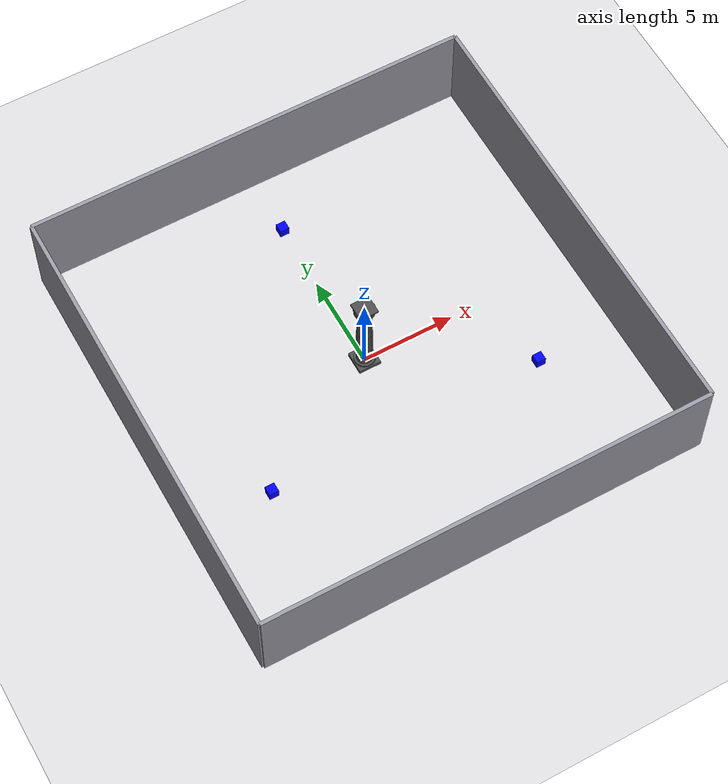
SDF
<?xml version='1.0' encoding='utf-8'?>
<sdf version="1.7">
  <world name="default">

    <physics type="ode">
      <max_step_size>0.004</max_step_size>
      <real_time_factor>1.0</real_time_factor>
      <real_time_update_rate>250</real_time_update_rate>
    </physics>
    <gravity>0 0 -9.8</gravity>
    <magnetic_field>6e-06 2.3e-05 -4.2e-05</magnetic_field>
    <atmosphere type="adiabatic" />
    <scene>
      <grid>false</grid>
      <ambient>0.4 0.4 0.4 1</ambient>
      <background>0.7 0.7 0.7 1</background>
      <shadows>true</shadows>
    </scene>

    <light name="sunUTC" type="directional">
      <pose>0 0 100 0 0 0</pose>
      <diffuse>0.8 0.8 0.8 1</diffuse>
      <specular>0.1 0.1 0.1 1</specular>
      <direction>0 0 -1</direction>
      <cast_shadows>true</cast_shadows>
    </light>

    <spherical_coordinates>
      <surface_model>EARTH_WGS84</surface_model>
      <world_frame_orientation>ENU</world_frame_orientation>
      <latitude_deg>47.397971057728974</latitude_deg>
      <longitude_deg> 8.546163739800146</longitude_deg>
      <elevation>0</elevation>
    </spherical_coordinates>

    <model name="ground">
      <static>true</static>
      <link name="ground_link">
        <collision name="ground_collision">
          <geometry>
            <plane>
              <normal>0 0 1</normal>
              <size>100 100</size>
            </plane>
          </geometry>
          <surface>
            <friction><ode><mu>1.0</mu><mu2>1.0</mu2></ode></friction>
          </surface>
        </collision>
        <visual name="ground_visual">
          <geometry>
            <plane><normal>0 0 1</normal><size>100 100</size></plane>
          </geometry>
          <material>
            <ambient>0.85 0.85 0.86 1</ambient>
            <diffuse>0.85 0.85 0.86 1</diffuse>
            <pbr><metal><roughness>0.95</roughness><metalness>0.0</metalness></metal></pbr>
          </material>
        </visual>
      </link>
    </model>

    <model name="wall_north"><static>true</static><pose>0 12 2.5 0 0 0</pose>
      <link name="wall">
      <collision name="c"><geometry><box><size>24 0.2 5</size></box></geometry></collision>
      <visual name="v"><geometry><box><size>24 0.2 5</size></box></geometry>
        <material><ambient>0.6 0.6 0.64 1</ambient><diffuse>0.6 0.6 0.64 1</diffuse></material>
      </visual>
      </link>
    </model>
    <model name="wall_south"><static>true</static><pose>0 -12 2.5 0 0 0</pose>
      <link name="wall">
      <collision name="c"><geometry><box><size>24 0.2 5</size></box></geometry></collision>
      <visual name="v"><geometry><box><size>24 0.2 5</size></box></geometry>
        <material><ambient>0.6 0.6 0.64 1</ambient><diffuse>0.6 0.6 0.64 1</diffuse></material>
      </visual>
      </link>
    </model>
    <model name="wall_east"><static>true</static><pose>12 0 2.5 0 0 1.5708</pose>
      <link name="wall">
      <collision name="c"><geometry><box><size>24 0.2 5</size></box></geometry></collision>
      <visual name="v"><geometry><box><size>24 0.2 5</size></box></geometry>
        <material><ambient>0.6 0.6 0.64 1</ambient><diffuse>0.6 0.6 0.64 1</diffuse></material>
      </visual>
      </link>
    </model>
    <model name="wall_west"><static>true</static><pose>-12 0 2.5 0 0 1.5708</pose>
      <link name="wall">
      <collision name="c"><geometry><box><size>24 0.2 5</size></box></geometry></collision>
      <visual name="v"><geometry><box><size>24 0.2 5</size></box></geometry>
        <material><ambient>0.6 0.6 0.64 1</ambient><diffuse>0.6 0.6 0.64 1</diffuse></material>
      </visual>
      </link>
    </model>

    <model name="ble_beacon_1"><static>true</static><pose>0 8.66 0.25 0 0 0</pose>
      <link name="link">
      <collision name="c"><geometry><box><size>0.5 0.5 0.5</size></box></geometry></collision>
      <visual name="v"><geometry><box><size>0.5 0.5 0.5</size></box></geometry>
      <material><ambient>0 0 1 1</ambient><diffuse>0 0 1 1</diffuse></material>
      </visual>
      </link>
    </model>
    <model name="ble_beacon_2"><static>true</static><pose>-7.5 -4.33 0.25 0 0 0</pose>
      <link name="link">
      <collision name="c"><geometry><box><size>0.5 0.5 0.5</size></box></geometry></collision>
      <visual name="v"><geometry><box><size>0.5 0.5 0.5</size></box></geometry>
      <material><ambient>0 0 1 1</ambient><diffuse>0 0 1 1</diffuse></material>
      </visual>
      </link>
    </model>
    <model name="ble_beacon_3"><static>true</static><pose>7.5 -4.33 0.25 0 0 0</pose>
      <link name="link">
      <collision name="c"><geometry><box><size>0.5 0.5 0.5</size></box></geometry></collision>
      <visual name="v"><geometry><box><size>0.5 0.5 0.5</size></box></geometry>
      <material><ambient>0 0 1 1</ambient><diffuse>0 0 1 1</diffuse></material>
      </visual>
      </link>
    </model>

    <model name="roman_column">
      <static>true</static>
      <pose>0 0 0 0 0 0</pose>
      <link name="column">
      <collision name="column_collision">
      <pose>0 0 2.5 0 0 0</pose>
      <geometry>
      <cylinder>
        <radius>0.45</radius>
        <length>5.0</length>
      </cylinder>
      </geometry>
      </collision>
      <visual name="plinth">
      <pose>0 0 0.1 0 0 0</pose>
      <geometry>
      <box>
        <size>1.2 1.2 0.2</size>
      </box>
      </geometry>
      <material>
      <ambient>0.3 0.3 0.3 1.0</ambient>
      <diffuse>0.3 0.3 0.3 1.0</diffuse>
      <pbr>
        <metal>
        <roughness>0.8</roughness>
        <metalness>0.0</metalness>
        </metal>
      </pbr>
      </material>
      </visual>
      <visual name="base_round">
      <pose>0 0 0.25 0 0 0</pose>
      <geometry>
      <cylinder>
        <radius>0.55</radius>
        <length>0.1</length>
      </cylinder>
      </geometry>
      <material>
      <ambient>0.3 0.3 0.3 1.0</ambient>
      <diffuse>0.3 0.3 0.3 1.0</diffuse>
      <pbr>
        <metal>
        <roughness>0.8</roughness>
        <metalness>0.0</metalness>
        </metal>
      </pbr>
      </material>
      </visual>
      <visual name="shaft_lower">
      <pose>0 0 1.5 0 0 0</pose>
      <geometry>
      <cylinder>
        <radius>0.42</radius>
        <length>2.4</length>
      </cylinder>
      </geometry>
      <material>
      <ambient>0.3 0.3 0.3 1.0</ambient>
      <diffuse>0.3 0.3 0.3 1.0</diffuse>
      <pbr>
        <metal>
        <roughness>0.8</roughness>
        <metalness>0.0</metalness>
        </metal>
      </pbr>
      </material>
      </visual>
      <visual name="shaft_upper">
      <pose>0 0 3.7 0 0 0</pose>
      <geometry>
      <cylinder>
        <radius>0.38</radius>
        <length>2.0</length>
      </cylinder>
      </geometry>
      <material>
      <ambient>0.3 0.3 0.3 1.0</ambient>
      <diffuse>0.3 0.3 0.3 1.0</diffuse>
      <pbr>
        <metal>
        <roughness>0.8</roughness>
        <metalness>0.0</metalness>
        </metal>
      </pbr>
      </material>
      </visual>
      <visual name="capital_round">
      <pose>0 0 4.8 0 0 0</pose>
      <geometry>
      <cylinder>
        <radius>0.55</radius>
        <length>0.2</length>
      </cylinder>
      </geometry>
      <material>
      <ambient>0.3 0.3 0.3 1.0</ambient>
      <diffuse>0.3 0.3 0.3 1.0</diffuse>
      <pbr>
        <metal>
        <roughness>0.8</roughness>
        <metalness>0.0</metalness>
        </metal>
      </pbr>
      </material>
      </visual>
      <visual name="abacus">
      <pose>0 0 4.95 0 0 0</pose>
      <geometry>
      <box>
        <size>1.0 1.0 0.1</size>
      </box>
      </geometry>
      <material>
      <ambient>0.3 0.3 0.3 1.0</ambient>
      <diffuse>0.3 0.3 0.3 1.0</diffuse>
      <pbr>
        <metal>
        <roughness>0.8</roughness>
        <metalness>0.0</metalness>
        </metal>
      </pbr>
      </material>
      </visual>
      </link>
    </model>

    </world>
</sdf>
